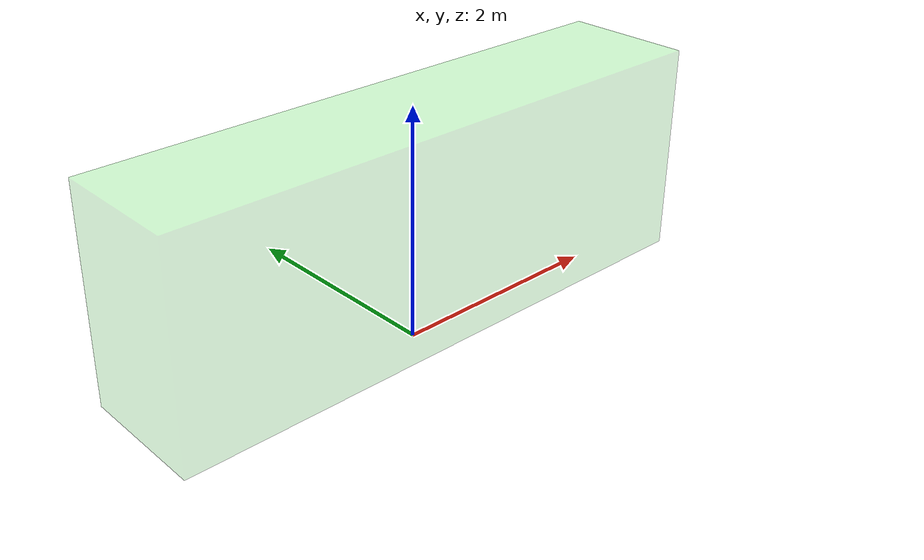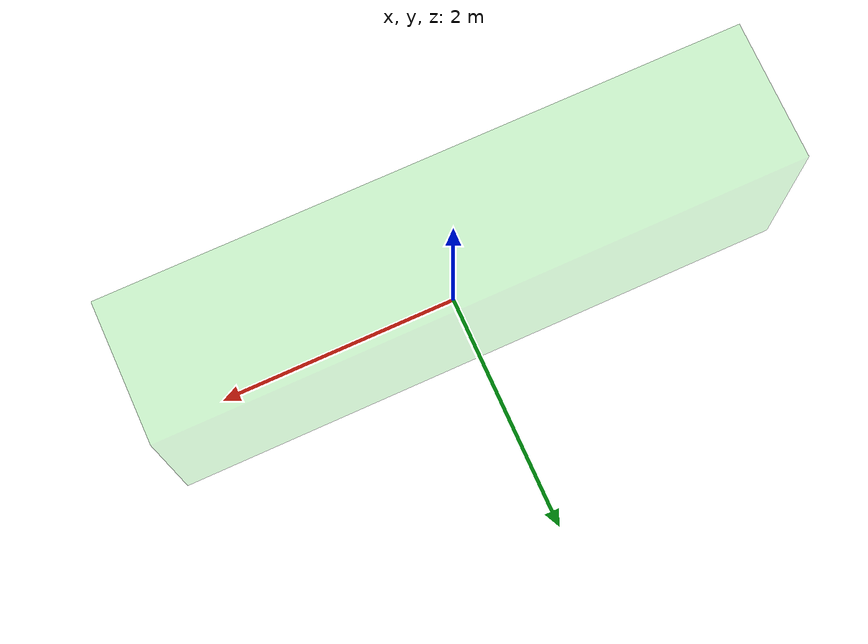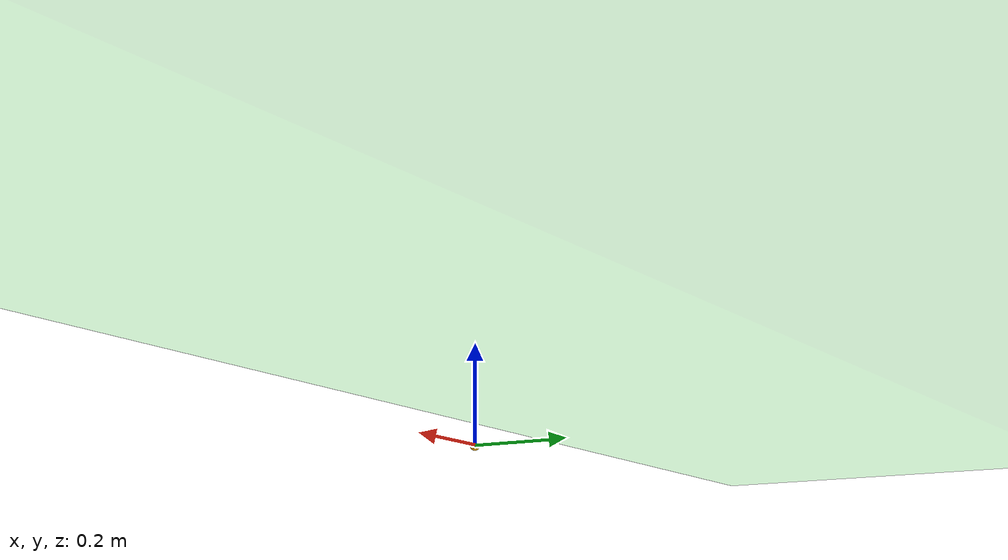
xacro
<?xml version="1.0" ?>

<robot name="robot_car" xmlns:xacro="http://www.ros.org/wiki/xacro">

  <!-- base -->
  <xacro:property name="base_length" value="5"/>
  <xacro:property name="base_width" value="1.1"/>
  <xacro:property name="base_height" value="1.8"/>

  <xacro:property name="base_wheelbase" value="3"/>
  <xacro:property name="base_cog2front" value="1.2"/>
  <xacro:property name="base_cog_height" value="0.55"/>
   <xacro:property name="base_ground_clearence" value="0.2"/>

  <xacro:property name="base_mass" value="1800"/>
  <xacro:property name="base_mass_ixx" value="900"/>
  <xacro:property name="base_mass_iyy" value="2700"/>
  <xacro:property name="base_mass_izz" value="2700"/>

  <xacro:property name="wheel_radius" value="0.38" />
 <!-- base -->

 <link name="base_footprint">
  <visual>
    <geometry>
      <sphere radius="0.01"/>
    </geometry>
      <origin xyz="0 0 0" rpy="0 0 0"/>
  </visual>
 </link>

  <!--Car Body-->
  <link name="base_link">
    <collision>
      <origin xyz="0 0 0" rpy="0 0 0"/>
      <geometry>
        <box size="${base_length} ${base_width} ${base_height}"/>
      </geometry>
    </collision>

       <inertial>
      <origin xyz="0 0 0" rpy="0 0 0"/>
      <mass value="${base_mass}"/>
      <inertia
        ixx="${base_mass_ixx}"  ixy="0.000000"  ixz="0.000000"
        iyy="${base_mass_iyy}"  iyz="0.000000"
        izz="${base_mass_izz}"/>
    </inertial>

    <visual>
      <origin xyz="0 0 0 " rpy="0 0 0"/>
      <geometry>
        <box size="${base_length} ${base_width} ${base_height}"/>
      </geometry>
      <material name="b_color" >
        <color  rgba="0 0.8 0 0.2" />
      </material>
    </visual>
  </link>

      <gazebo reference="base_link">
        <material>Gazebo/Green</material>
    </gazebo>

  <joint name="base_joint" type="fixed">
    <parent link="base_footprint"/>
    <child link="base_link"/>
     <origin xyz="0  0 ${0.5*base_height + base_ground_clearence}" rpy="0 0 0"/>
  </joint>

  </robot>
